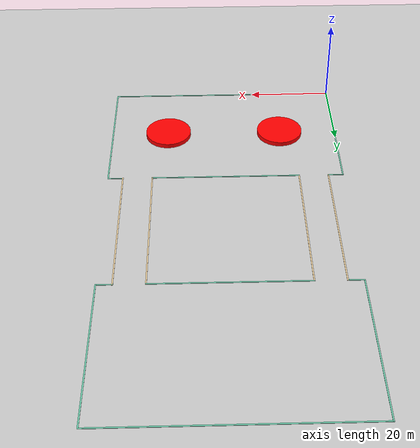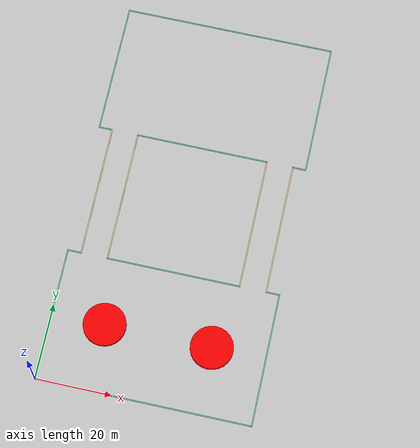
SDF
<sdf version="1.6">
 <world name="default">
  <light name="sun" type="directional">
   <pose>0 0 10 0 -0 0</pose>
   <diffuse>0.8 0.8 0.8 1</diffuse>
   <specular>0.1 0.1 0.1 1</specular>
   <attenuation>
    <range>1000</range>
    <constant>0.9</constant>
    <linear>0.01</linear>
    <quadratic>0.001</quadratic>
   </attenuation>
   <direction>-0.5 0.5 -1</direction>
  </light>
  <model name="ground_plane">
   <static>1</static>
   <link name="link">
    <collision name="collision">
     <geometry><plane><normal>0 0 1</normal><size>100 100</size></plane></geometry>
     <surface><friction><ode><mu>100</mu><mu2>50</mu2></ode></friction></surface>
    </collision>
    <visual name="visual">
     <cast_shadows>0</cast_shadows>
     <geometry><plane><normal>0 0 1</normal><size>100 100</size></plane></geometry>
     <material>
      <script><uri>file://media/materials/scripts/gazebo.material</uri><name>Gazebo/Grey</name></script>
     </material>
    </visual>
   </link>
  </model>
  <gravity>0 0 -9.8</gravity>
  <magnetic_field>6e-06 2.3e-05 -4.2e-05</magnetic_field>
  <atmosphere type="adiabatic"/>
  <physics name="default_physics" default="0" type="ode">
   <max_step_size>0.001</max_step_size>
   <real_time_factor>1</real_time_factor>
   <real_time_update_rate>1000</real_time_update_rate>
  </physics>
  <scene><ambient>0.4 0.4 0.4 1</ambient><background>0.7 0.7 0.7 1</background><shadows>1</shadows></scene>
  <spherical_coordinates>
   <surface_model>EARTH_WGS84</surface_model>
   <latitude_deg>0</latitude_deg>
   <longitude_deg>0</longitude_deg>
   <elevation>0</elevation>
   <heading_deg>0</heading_deg>
  </spherical_coordinates>
  <model name="FreeFlightArea1">
   <pose>28 17.5 0 0 -0 0</pose>
   <link name="Wall_0">
    <collision name="Wall_0_Collision">
     <geometry><box><size>56.3 0.3 0.1</size></box></geometry>
     <pose>0 0 0.05 0 -0 0</pose>
    </collision>
    <visual name="Wall_0_Visual">
     <pose>0 0 0.05 0 -0 0</pose>
     <geometry><box><size>56.3 0.3 0.1</size></box></geometry>
     <material>
      <script><uri>file://media/materials/scripts/gazebo.material</uri><name>Gazebo/Grey</name></script>
      <ambient>0.435294 0.796078 0.67451 1</ambient>
     </material>
    </visual>
    <pose>0 -17.5 0 0 -0 0</pose>
   </link>
   <link name="Wall_1">
    <collision name="Wall_1_Collision">
     <geometry><box><size>35.3 0.3 0.1</size></box></geometry>
     <pose>0 0 0.05 0 -0 0</pose>
    </collision>
    <visual name="Wall_1_Visual">
     <pose>0 0 0.05 0 -0 0</pose>
     <geometry><box><size>35.3 0.3 0.1</size></box></geometry>
     <material>
      <script><uri>file://media/materials/scripts/gazebo.material</uri><name>Gazebo/Grey</name></script>
      <ambient>0.435294 0.796078 0.67451 1</ambient>
     </material>
    </visual>
    <pose>28 0 0 0 -0 1.5708</pose>
   </link>
   <link name="Wall_2">
    <collision name="Wall_2_Collision">
     <geometry><box><size>3.5 0.3 0.1</size></box></geometry>
     <pose>0 0 0.05 0 -0 0</pose>
    </collision>
    <visual name="Wall_2_Visual">
     <pose>0 0 0.05 0 -0 0</pose>
     <geometry><box><size>3.5 0.3 0.1</size></box></geometry>
     <material>
      <script><uri>file://media/materials/scripts/gazebo.material</uri><name>Gazebo/Grey</name></script>
      <ambient>0.435294 0.796078 0.67451 1</ambient>
     </material>
    </visual>
    <pose>26.4 17.5 0 0 -0 3.14159</pose>
   </link>
   <link name="Wall_21">
    <collision name="Wall_21_Collision">
     <geometry><box><size>35.3 0.3 0.1</size></box></geometry>
     <pose>0 0 0.05 0 -0 0</pose>
    </collision>
    <visual name="Wall_21_Visual">
     <pose>0 0 0.05 0 -0 0</pose>
     <geometry><box><size>35.3 0.3 0.1</size></box></geometry>
     <material>
      <script><uri>file://media/materials/scripts/gazebo.material</uri><name>Gazebo/Grey</name></script>
      <ambient>0.435294 0.796078 0.67451 1</ambient>
     </material>
    </visual>
    <pose>0 17.5 0 0 -0 0</pose>
   </link>
   <link name="Wall_23">
    <collision name="Wall_23_Collision">
     <geometry><box><size>35.3 0.3 0.1</size></box></geometry>
     <pose>0 0 0.05 0 -0 0</pose>
    </collision>
    <visual name="Wall_23_Visual">
     <pose>0 0 0.05 0 -0 0</pose>
     <geometry><box><size>35.3 0.3 0.1</size></box></geometry>
     <material>
      <script><uri>file://media/materials/scripts/gazebo.material</uri><name>Gazebo/Grey</name></script>
      <ambient>0.435294 0.796078 0.67451 1</ambient>
     </material>
    </visual>
    <pose>-28 0 0 0 0 -1.5708</pose>
   </link>
   <link name="Wall_25">
    <collision name="Wall_25_Collision">
     <geometry><box><size>3.8 0.3 0.1</size></box></geometry>
     <pose>0 0 0.05 0 -0 0</pose>
    </collision>
    <visual name="Wall_25_Visual">
     <pose>0 0 0.05 0 -0 0</pose>
     <geometry><box><size>3.8 0.3 0.1</size></box></geometry>
     <material>
      <script><uri>file://media/materials/scripts/gazebo.material</uri><name>Gazebo/Grey</name></script>
      <ambient>0.435294 0.796078 0.67451 1</ambient>
     </material>
    </visual>
    <pose>-26.25 17.5 0 0 -0 0</pose>
   </link>
   <static>1</static>
  </model>
  <model name="FreeFlightArea1_0">
   <pose>28 87.5 0 0 -0 3.14</pose>
   <link name="Wall_0">
    <collision name="Wall_0_Collision">
     <geometry><box><size>56.3 0.3 0.1</size></box></geometry>
     <pose>0 0 0.05 0 -0 0</pose>
    </collision>
    <visual name="Wall_0_Visual">
     <pose>0 0 0.05 0 -0 0</pose>
     <geometry><box><size>56.3 0.3 0.1</size></box></geometry>
     <material>
      <script><uri>file://media/materials/scripts/gazebo.material</uri><name>Gazebo/Grey</name></script>
      <ambient>0.435294 0.796078 0.67451 1</ambient>
     </material>
    </visual>
    <pose>0 -17.5 0 0 -0 0</pose>
   </link>
   <link name="Wall_1">
    <collision name="Wall_1_Collision">
     <geometry><box><size>35.3 0.3 0.1</size></box></geometry>
     <pose>0 0 0.05 0 -0 0</pose>
    </collision>
    <visual name="Wall_1_Visual">
     <pose>0 0 0.05 0 -0 0</pose>
     <geometry><box><size>35.3 0.3 0.1</size></box></geometry>
     <material>
      <script><uri>file://media/materials/scripts/gazebo.material</uri><name>Gazebo/Grey</name></script>
      <ambient>0.435294 0.796078 0.67451 1</ambient>
     </material>
    </visual>
    <pose>28 0 0 0 -0 1.5708</pose>
   </link>
   <link name="Wall_2">
    <collision name="Wall_2_Collision">
     <geometry><box><size>3.5 0.3 0.1</size></box></geometry>
     <pose>0 0 0.05 0 -0 0</pose>
    </collision>
    <visual name="Wall_2_Visual">
     <pose>0 0 0.05 0 -0 0</pose>
     <geometry><box><size>3.5 0.3 0.1</size></box></geometry>
     <material>
      <script><uri>file://media/materials/scripts/gazebo.material</uri><name>Gazebo/Grey</name></script>
      <ambient>0.435294 0.796078 0.67451 1</ambient>
     </material>
    </visual>
    <pose>26.4 17.5 0 0 -0 3.14159</pose>
   </link>
   <link name="Wall_21">
    <collision name="Wall_21_Collision">
     <geometry><box><size>35.3 0.3 0.1</size></box></geometry>
     <pose>0 0 0.05 0 -0 0</pose>
    </collision>
    <visual name="Wall_21_Visual">
     <pose>0 0 0.05 0 -0 0</pose>
     <geometry><box><size>35.3 0.3 0.1</size></box></geometry>
     <material>
      <script><uri>file://media/materials/scripts/gazebo.material</uri><name>Gazebo/Grey</name></script>
      <ambient>0.435294 0.796078 0.67451 1</ambient>
     </material>
    </visual>
    <pose>0 17.5 0 0 -0 0</pose>
   </link>
   <link name="Wall_23">
    <collision name="Wall_23_Collision">
     <geometry><box><size>35.3 0.3 0.1</size></box></geometry>
     <pose>0 0 0.05 0 -0 0</pose>
    </collision>
    <visual name="Wall_23_Visual">
     <pose>0 0 0.05 0 -0 0</pose>
     <geometry><box><size>35.3 0.3 0.1</size></box></geometry>
     <material>
      <script><uri>file://media/materials/scripts/gazebo.material</uri><name>Gazebo/Grey</name></script>
      <ambient>0.435294 0.796078 0.67451 1</ambient>
     </material>
    </visual>
    <pose>-28 0 0 0 0 -1.5708</pose>
   </link>
   <link name="Wall_25">
    <collision name="Wall_25_Collision">
     <geometry><box><size>3.8 0.3 0.1</size></box></geometry>
     <pose>0 0 0.05 0 -0 0</pose>
    </collision>
    <visual name="Wall_25_Visual">
     <pose>0 0 0.05 0 -0 0</pose>
     <geometry><box><size>3.8 0.3 0.1</size></box></geometry>
     <material>
      <script><uri>file://media/materials/scripts/gazebo.material</uri><name>Gazebo/Grey</name></script>
      <ambient>0.435294 0.796078 0.67451 1</ambient>
     </material>
    </visual>
    <pose>-26.25 17.5 0 0 -0 0</pose>
   </link>
   <static>1</static>
  </model>
  <model name="tunnel1">
   <pose>7 52.5 0 0 -0 0</pose>
   <link name="Wall_61">
    <collision name="Wall_61_Collision">
     <geometry><box><size>35.3 0.3 0.1</size></box></geometry>
     <pose>0 0 0.05 0 -0 0</pose>
    </collision>
    <visual name="Wall_61_Visual">
     <pose>0 0 0.05 0 -0 0</pose>
     <geometry><box><size>35.3 0.3 0.1</size></box></geometry>
     <material>
      <script><uri>file://media/materials/scripts/gazebo.material</uri><name>Gazebo/Grey</name></script>
      <ambient>0.921569 0.807843 0.615686 1</ambient>
     </material>
    </visual>
    <pose>-3.5 0 0 0 0 -1.5708</pose>
   </link>
   <link name="Wall_63">
    <collision name="Wall_63_Collision">
     <geometry><box><size>35.3 0.3 0.1</size></box></geometry>
     <pose>0 0 0.05 0 -0 0</pose>
    </collision>
    <visual name="Wall_63_Visual">
     <pose>0 0 0.05 0 -0 0</pose>
     <geometry><box><size>35.3 0.3 0.1</size></box></geometry>
     <material>
      <script><uri>file://media/materials/scripts/gazebo.material</uri><name>Gazebo/Grey</name></script>
      <ambient>0.921569 0.807843 0.615686 1</ambient>
     </material>
    </visual>
    <pose>3.5 0 0 0 -0 1.5708</pose>
   </link>
   <static>1</static>
  </model>
  <model name="tunnel1_0">
   <pose>49 52.5 0 0 -0 0</pose>
   <link name="Wall_61">
    <collision name="Wall_61_Collision">
     <geometry><box><size>35.3 0.3 0.1</size></box></geometry>
     <pose>0 0 0.05 0 -0 0</pose>
    </collision>
    <visual name="Wall_61_Visual">
     <pose>0 0 0.05 0 -0 0</pose>
     <geometry><box><size>35.3 0.3 0.1</size></box></geometry>
     <material>
      <script><uri>file://media/materials/scripts/gazebo.material</uri><name>Gazebo/Grey</name></script>
      <ambient>0.921569 0.807843 0.615686 1</ambient>
     </material>
    </visual>
    <pose>-3.5 0 0 0 0 -1.5708</pose>
   </link>
   <link name="Wall_63">
    <collision name="Wall_63_Collision">
     <geometry><box><size>35.3 0.3 0.1</size></box></geometry>
     <pose>0 0 0.05 0 -0 0</pose>
    </collision>
    <visual name="Wall_63_Visual">
     <pose>0 0 0.05 0 -0 0</pose>
     <geometry><box><size>35.3 0.3 0.1</size></box></geometry>
     <material>
      <script><uri>file://media/materials/scripts/gazebo.material</uri><name>Gazebo/Grey</name></script>
      <ambient>0.921569 0.807843 0.615686 1</ambient>
     </material>
    </visual>
    <pose>3.5 0 0 0 -0 1.5708</pose>
   </link>
   <static>1</static>
  </model>
  <model name="obstcal1_1">
   <link name="link">
    <inertial>
     <mass>1</mass>
     <inertia><ixx>0.145833</ixx><ixy>0</ixy><ixz>0</ixz><iyy>0.145833</iyy><iyz>0</iyz><izz>0.125</izz></inertia>
    </inertial>
    <visual name="visual">
     <geometry><cylinder><radius>5.6</radius><length>2</length></cylinder></geometry>
     <material>
      <script><name>Gazebo/Grey</name><uri>file://media/materials/scripts/gazebo.material</uri></script>
      <ambient>1 0 0 1</ambient>
      <diffuse>0.7 0.7 0.7 1</diffuse>
      <specular>0.01 0.01 0.01 1</specular>
      <emissive>0 0 0 1</emissive>
      <shader type="vertex"><normal_map>__default__</normal_map></shader>
     </material>
    </visual>
    <collision name="collision">
     <geometry><cylinder><radius>0.5</radius><length>1</length></cylinder></geometry>
     <surface>
      <friction>
       <ode><mu>1</mu><mu2>1</mu2><fdir1>0 0 0</fdir1><slip1>0</slip1><slip2>0</slip2></ode>
       <torsional>
        <coefficient>1</coefficient>
        <patch_radius>0</patch_radius>
        <surface_radius>0</surface_radius>
        <use_patch_radius>1</use_patch_radius>
        <ode><slip>0</slip></ode>
       </torsional>
      </friction>
      <bounce><restitution_coefficient>0</restitution_coefficient><threshold>1e+06</threshold></bounce>
      <contact>
       <collide_without_contact>0</collide_without_contact>
       <collide_without_contact_bitmask>1</collide_without_contact_bitmask>
       <collide_bitmask>1</collide_bitmask>
       <ode>
        <soft_cfm>0</soft_cfm>
        <soft_erp>0.2</soft_erp>
        <kp>1e+13</kp>
        <kd>1</kd>
        <max_vel>0.01</max_vel>
        <min_depth>0</min_depth>
       </ode>
       <bullet>
        <split_impulse>1</split_impulse>
        <split_impulse_penetration_threshold>-0.01</split_impulse_penetration_threshold>
        <soft_cfm>0</soft_cfm>
        <soft_erp>0.2</soft_erp>
        <kp>1e+13</kp>
        <kd>1</kd>
       </bullet>
      </contact>
     </surface>
    </collision>
   </link>
   <model name="wood_block_10_2_1cm">
    <link name="link">
     <pose>0 0 0.005 0 -0 0</pose>
     <inertial>
      <mass>0.0125</mass>
      <inertia>
       <ixx>7.55208e-07</ixx>
       <ixy>0</ixy>
       <ixz>0</ixz>
       <iyy>1.05208e-05</iyy>
       <iyz>0</iyz>
       <izz>1.10677e-05</izz>
      </inertia>
     </inertial>
     <collision name="collision">
      <geometry><box><size>0.1 0.025 0.01</size></box></geometry>
      <surface>
       <contact>
        <poissons_ratio>0.347</poissons_ratio>
        <elastic_modulus>8.8e+09</elastic_modulus>
        <ode><kp>100000</kp><kd>1</kd><max_vel>1</max_vel><min_depth>0.001</min_depth></ode>
       </contact>
       <friction>
        <torsional>
         <coefficient>1</coefficient>
         <use_patch_radius>0</use_patch_radius>
         <surface_radius>0.05</surface_radius>
        </torsional>
       </friction>
      </surface>
     </collision>
     <visual name="visual">
      <geometry><box><size>0.1 0.025 0.01</size></box></geometry>
      <material>
       <script><uri>file://media/materials/scripts/gazebo.material</uri><name>Gazebo/Wood</name></script>
      </material>
     </visual>
    </link>
    <pose>0.14242 1.0425 0 0 -0 0</pose>
   </model>
   <static>0</static>
   <pose>14 17.5 0 0 -0 0</pose>
  </model>
  <model name="obstcal1_1_clone">
   <link name="link">
    <inertial>
     <mass>1</mass>
     <inertia><ixx>0.145833</ixx><ixy>0</ixy><ixz>0</ixz><iyy>0.145833</iyy><iyz>0</iyz><izz>0.125</izz></inertia>
    </inertial>
    <visual name="visual">
     <geometry><cylinder><radius>5.6</radius><length>2</length></cylinder></geometry>
     <material>
      <script><name>Gazebo/Grey</name><uri>file://media/materials/scripts/gazebo.material</uri></script>
      <ambient>1 0 0 1</ambient>
      <diffuse>0.7 0.7 0.7 1</diffuse>
      <specular>0.01 0.01 0.01 1</specular>
      <emissive>0 0 0 1</emissive>
      <shader type="vertex"><normal_map>__default__</normal_map></shader>
     </material>
    </visual>
    <collision name="collision">
     <geometry><cylinder><radius>0.5</radius><length>1</length></cylinder></geometry>
     <surface>
      <friction>
       <ode><mu>1</mu><mu2>1</mu2><fdir1>0 0 0</fdir1><slip1>0</slip1><slip2>0</slip2></ode>
       <torsional>
        <coefficient>1</coefficient>
        <patch_radius>0</patch_radius>
        <surface_radius>0</surface_radius>
        <use_patch_radius>1</use_patch_radius>
        <ode><slip>0</slip></ode>
       </torsional>
      </friction>
      <bounce><restitution_coefficient>0</restitution_coefficient><threshold>1e+06</threshold></bounce>
      <contact>
       <collide_without_contact>0</collide_without_contact>
       <collide_without_contact_bitmask>1</collide_without_contact_bitmask>
       <collide_bitmask>1</collide_bitmask>
       <ode>
        <soft_cfm>0</soft_cfm>
        <soft_erp>0.2</soft_erp>
        <kp>1e+13</kp>
        <kd>1</kd>
        <max_vel>0.01</max_vel>
        <min_depth>0</min_depth>
       </ode>
       <bullet>
        <split_impulse>1</split_impulse>
        <split_impulse_penetration_threshold>-0.01</split_impulse_penetration_threshold>
        <soft_cfm>0</soft_cfm>
        <soft_erp>0.2</soft_erp>
        <kp>1e+13</kp>
        <kd>1</kd>
       </bullet>
      </contact>
     </surface>
    </collision>
   </link>
   <model name="wood_block_10_2_1cm">
    <link name="link">
     <pose>0 0 0.005 0 -0 0</pose>
     <inertial>
      <mass>0.0125</mass>
      <inertia>
       <ixx>7.55208e-07</ixx>
       <ixy>0</ixy>
       <ixz>0</ixz>
       <iyy>1.05208e-05</iyy>
       <iyz>0</iyz>
       <izz>1.10677e-05</izz>
      </inertia>
     </inertial>
     <collision name="collision">
      <geometry><box><size>0.1 0.025 0.01</size></box></geometry>
      <surface>
       <contact>
        <poissons_ratio>0.347</poissons_ratio>
        <elastic_modulus>8.8e+09</elastic_modulus>
        <ode><kp>100000</kp><kd>1</kd><max_vel>1</max_vel><min_depth>0.001</min_depth></ode>
       </contact>
       <friction>
        <torsional>
         <coefficient>1</coefficient>
         <use_patch_radius>0</use_patch_radius>
         <surface_radius>0.05</surface_radius>
        </torsional>
       </friction>
      </surface>
     </collision>
     <visual name="visual">
      <geometry><box><size>0.1 0.025 0.01</size></box></geometry>
      <material>
       <script><uri>file://media/materials/scripts/gazebo.material</uri><name>Gazebo/Wood</name></script>
      </material>
     </visual>
    </link>
    <pose>0.14242 1.0425 0 0 -0 0</pose>
   </model>
   <static>0</static>
   <pose>42 17.5 0 0 -0 0</pose>
  </model>
 </world>
</sdf>
